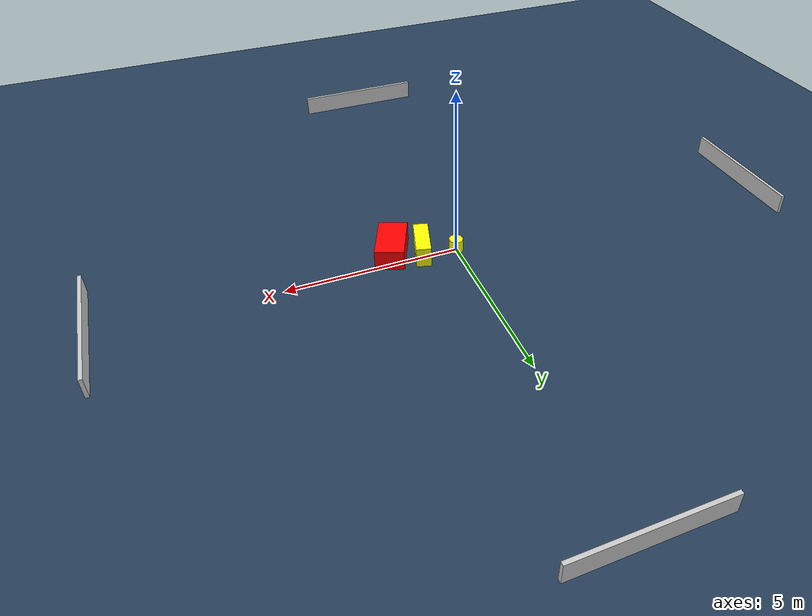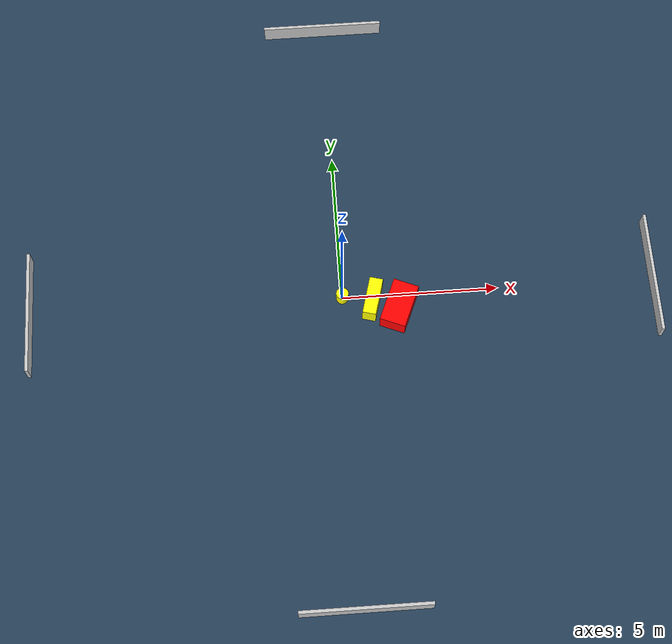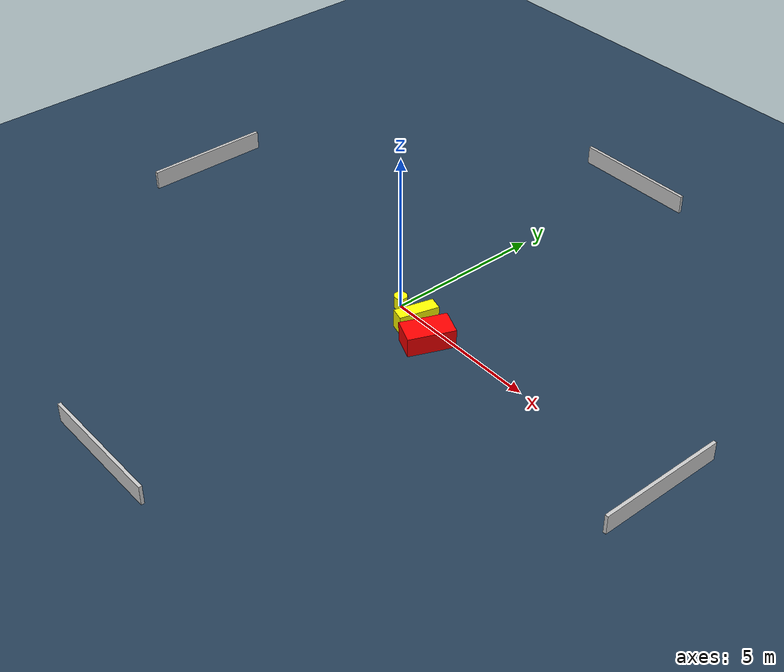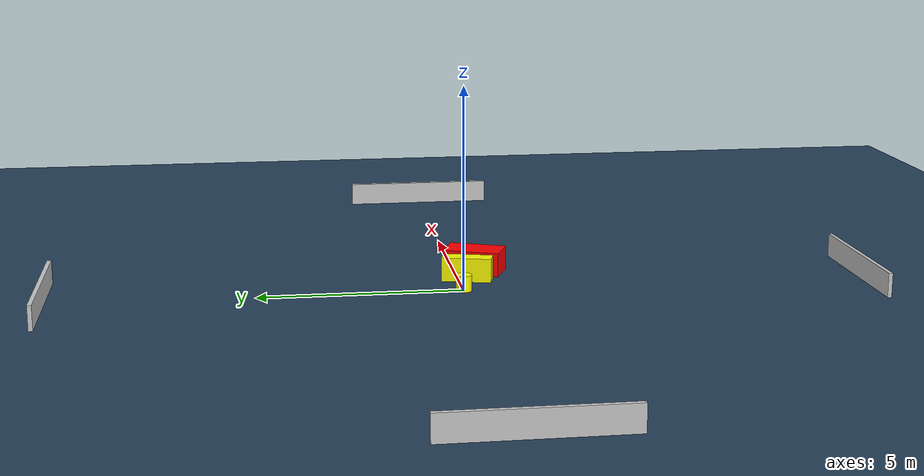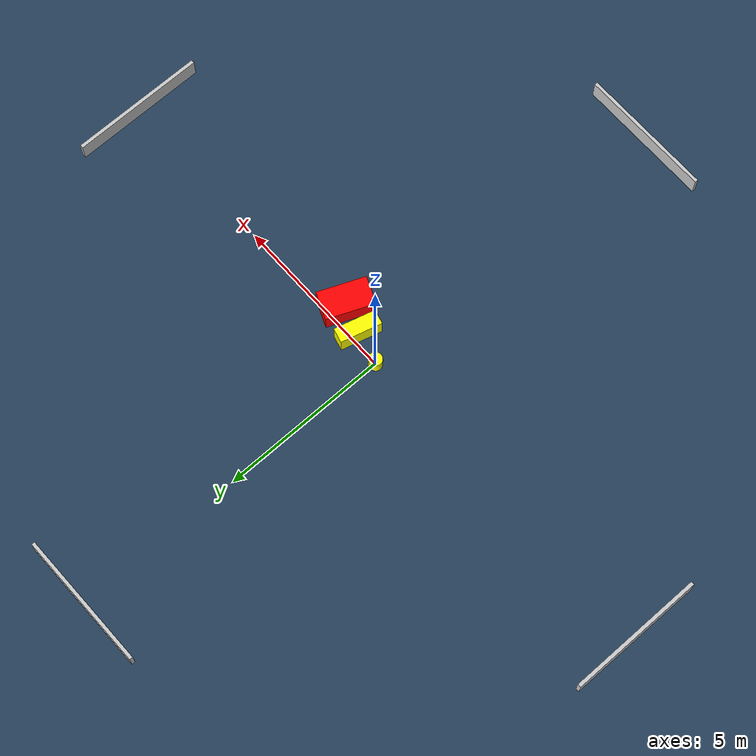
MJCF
<?xml version="1.0" ?>
<mujoco model="generated_environment">
  <option timestep="0.01" integrator="RK4" cone="elliptic"/>
  <default>
    <geom density="1"/>
  </default>
  <asset>
    <texture builtin="gradient" height="3072" name="skybox" rgb1="0.3 0.5 0.7" rgb2="0 0 0" type="skybox" width="512"/>
    <texture builtin="checker" height="300" name="groundplane" rgb1="0.2 0.3 0.4" rgb2="0.1 0.2 0.3" type="2d" width="300"/>
    <material name="groundplane" reflectance="0.2" texrepeat="5 5" texture="groundplane"/>
  </asset>
  <worldbody>
    <light dir="0 0 -1" directional="true" pos="0 0 1.5"/>
    <geom condim="3" friction="0.5 0.005 0.001" material="groundplane" name="floor" pos="0 0 0" size="0 0 0.05" type="plane"/>
    <body name="walls">
      <geom name="wall_1" condim="4" pos="-10.0 0.0 0.3" rgba="0.800000011920929 0.800000011920929 0.800000011920929 1.0" size="0.05 2.0 0.3" type="box"/>
      <geom name="wall_2" condim="4" pos="10.0 0.0 0.3" rgba="0.800000011920929 0.800000011920929 0.800000011920929 1.0" size="0.05 2.0 0.3" type="box"/>
      <geom name="wall_3" condim="4" pos="0.0 -10.0 0.3" rgba="0.800000011920929 0.800000011920929 0.800000011920929 1.0" size="2.0 0.05 0.3" type="box"/>
      <geom name="wall_4" condim="4" pos="0.0 10.0 0.3" rgba="0.800000011920929 0.800000011920929 0.800000011920929 1.0" size="2.0 0.05 0.3" type="box"/>
    </body>
    <body name="robot">
      <joint name="joint_x" type="slide" pos="0 0 0" axis="1 0 0"/>
      <joint name="joint_y" type="slide" pos="0 0 0" axis="0 1 0"/>
      <geom name="robot" type="cylinder" pos="0.0 0.0 0.2" size="0.2 0.2 0.0" mass="5.0" friction="1.0 0.005 0.0001" condim="4" rgba="1.0 1.0 0.0 1.0"/>
    </body>
    <body name="obstacle_1_movable">
      <geom name="obstacle_1_movable" condim="4" pos="0.9563306134648951 -0.22192035984910322 0.3" euler="0 0 254.72821654068662" friction="0.0 0.005 0.001" rgba="1.0 1.0 0.0 1.0" size="0.6160124697203189 0.21529188444008743 0.3" type="box" mass="0.1"/>
      <joint type="free"/>
    </body>
    <body name="obstacle_2_static">
      <geom name="obstacle_2_static" condim="4" pos="1.7805906755959795 -0.5176471450337286 0.3" euler="0 0 157.24951572921805" friction="0.0 0.005 0.001" rgba="1.0 0.0 0.0 1.0" size="0.4172328879742745 0.721868622264916 0.3" type="box"/>
    </body>
  </worldbody>
  <actuator>
    <motor name="actuator_x" joint="joint_x" gear="1" ctrlrange="-1 1"/>
    <motor name="actuator_y" joint="joint_y" gear="1" ctrlrange="-1 1"/>
  </actuator>
</mujoco>
